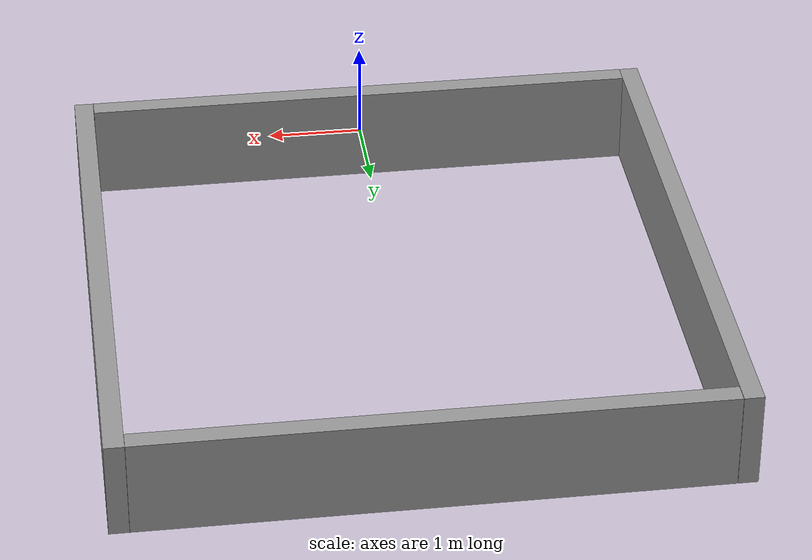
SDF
<?xml version='1.0'?>
<sdf version='1.6'>
  <model name='fence'>
    <link name='link'>
      <inertial>
        <mass>100</mass>
        <inertia>
          <ixx>16.6667</ixx>
          <ixy>0</ixy>
          <ixz>0</ixz>
          <iyy>16.6667</iyy>
          <iyz>0</iyz>
          <izz>16.6667</izz>
        </inertia>
        <pose frame=''>0 0 0 0 -0 0</pose>
      </inertial>
      <self_collide>0</self_collide>
      <enable_wind>0</enable_wind>
      <kinematic>0</kinematic>
      <pose frame=''>0 0 0 0 -0 0</pose>
      <gravity>1</gravity>
      <visual name='visual'>
        <geometry>
          <box>
            <size>5.8 0.2 1</size>
          </box>
        </geometry>
        <material>
          <script>
            <name>Gazebo/Grey</name>
            <uri>file://media/materials/scripts/gazebo.material</uri>
          </script>
          <shader type='vertex'>
            <normal_map>__default__</normal_map>
          </shader>
          <ambient>0.3 0.3 0.3 1</ambient>
          <diffuse>0.7 0.7 0.7 1</diffuse>
          <specular>0.01 0.01 0.01 1</specular>
          <emissive>0 0 0 1</emissive>
        </material>
        <pose frame=''>0 0 0 0 -0 0</pose>
        <transparency>0</transparency>
        <cast_shadows>1</cast_shadows>
      </visual>
      <collision name='collision'>
        <laser_retro>0</laser_retro>
        <max_contacts>10</max_contacts>
        <pose frame=''>0 0 0 0 -0 0</pose>
        <geometry>
          <box>
            <size>5.8 0.2 1</size>
          </box>
        </geometry>
        <surface>
          <friction>
            <ode>
              <mu>1</mu>
              <mu2>1</mu2>
              <fdir1>0 0 0</fdir1>
              <slip1>0</slip1>
              <slip2>0</slip2>
            </ode>
            <torsional>
              <coefficient>1</coefficient>
              <patch_radius>0</patch_radius>
              <surface_radius>0</surface_radius>
              <use_patch_radius>1</use_patch_radius>
              <ode>
                <slip>0</slip>
              </ode>
            </torsional>
          </friction>
          <bounce>
            <restitution_coefficient>0</restitution_coefficient>
            <threshold>1e+06</threshold>
          </bounce>
          <contact>
            <collide_without_contact>0</collide_without_contact>
            <collide_without_contact_bitmask>1</collide_without_contact_bitmask>
            <collide_bitmask>1</collide_bitmask>
            <ode>
              <soft_cfm>0</soft_cfm>
              <soft_erp>0.2</soft_erp>
              <kp>1e+13</kp>
              <kd>1</kd>
              <max_vel>0.01</max_vel>
              <min_depth>0</min_depth>
            </ode>
            <bullet>
              <split_impulse>1</split_impulse>
              <split_impulse_penetration_threshold>-0.01</split_impulse_penetration_threshold>
              <soft_cfm>0</soft_cfm>
              <soft_erp>0.2</soft_erp>
              <kp>1e+13</kp>
              <kd>1</kd>
            </bullet>
          </contact>
        </surface>
      </collision>
    </link>
    <link name='link_clone'>
      <inertial>
        <mass>100</mass>
        <inertia>
          <ixx>16.6667</ixx>
          <ixy>0</ixy>
          <ixz>0</ixz>
          <iyy>16.6667</iyy>
          <iyz>0</iyz>
          <izz>16.6667</izz>
        </inertia>
        <pose frame=''>0 0 0 0 -0 0</pose>
      </inertial>
      <self_collide>0</self_collide>
      <enable_wind>0</enable_wind>
      <kinematic>0</kinematic>
      <pose frame=''>-2.99969 3.00111 -2.9e-05 -1e-05 -0 1.5708</pose>
      <gravity>1</gravity>
      <visual name='visual'>
        <geometry>
          <box>
            <size>6.2 0.2 1</size>
          </box>
        </geometry>
        <material>
          <script>
            <name>Gazebo/Grey</name>
            <uri>file://media/materials/scripts/gazebo.material</uri>
          </script>
          <shader type='vertex'>
            <normal_map>__default__</normal_map>
          </shader>
          <ambient>0.3 0.3 0.3 1</ambient>
          <diffuse>0.7 0.7 0.7 1</diffuse>
          <specular>0.01 0.01 0.01 1</specular>
          <emissive>0 0 0 1</emissive>
        </material>
        <pose frame=''>0 0 0 0 -0 0</pose>
        <transparency>0</transparency>
        <cast_shadows>1</cast_shadows>
      </visual>
      <collision name='collision'>
        <laser_retro>0</laser_retro>
        <max_contacts>10</max_contacts>
        <pose frame=''>0 0 0 0 -0 0</pose>
        <geometry>
          <box>
            <size>6.2 0.2 1</size>
          </box>
        </geometry>
        <surface>
          <friction>
            <ode>
              <mu>1</mu>
              <mu2>1</mu2>
              <fdir1>0 0 0</fdir1>
              <slip1>0</slip1>
              <slip2>0</slip2>
            </ode>
            <torsional>
              <coefficient>1</coefficient>
              <patch_radius>0</patch_radius>
              <surface_radius>0</surface_radius>
              <use_patch_radius>1</use_patch_radius>
              <ode>
                <slip>0</slip>
              </ode>
            </torsional>
          </friction>
          <bounce>
            <restitution_coefficient>0</restitution_coefficient>
            <threshold>1e+06</threshold>
          </bounce>
          <contact>
            <collide_without_contact>0</collide_without_contact>
            <collide_without_contact_bitmask>1</collide_without_contact_bitmask>
            <collide_bitmask>1</collide_bitmask>
            <ode>
              <soft_cfm>0</soft_cfm>
              <soft_erp>0.2</soft_erp>
              <kp>1e+13</kp>
              <kd>1</kd>
              <max_vel>0.01</max_vel>
              <min_depth>0</min_depth>
            </ode>
            <bullet>
              <split_impulse>1</split_impulse>
              <split_impulse_penetration_threshold>-0.01</split_impulse_penetration_threshold>
              <soft_cfm>0</soft_cfm>
              <soft_erp>0.2</soft_erp>
              <kp>1e+13</kp>
              <kd>1</kd>
            </bullet>
          </contact>
        </surface>
      </collision>
    </link>
    <link name='link_clone_0'>
      <inertial>
        <mass>100</mass>
        <inertia>
          <ixx>16.6667</ixx>
          <ixy>0</ixy>
          <ixz>0</ixz>
          <iyy>16.6667</iyy>
          <iyz>0</iyz>
          <izz>16.6667</izz>
        </inertia>
        <pose frame=''>0 0 0 0 -0 0</pose>
      </inertial>
      <self_collide>0</self_collide>
      <enable_wind>0</enable_wind>
      <kinematic>0</kinematic>
      <pose frame=''>0.002993 6.00149 -5.9e-05 -1e-05 0 0</pose>
      <gravity>1</gravity>
      <visual name='visual'>
        <geometry>
          <box>
            <size>5.8 0.2 1</size>
          </box>
        </geometry>
        <material>
          <script>
            <name>Gazebo/Grey</name>
            <uri>file://media/materials/scripts/gazebo.material</uri>
          </script>
          <shader type='vertex'>
            <normal_map>__default__</normal_map>
          </shader>
          <ambient>0.3 0.3 0.3 1</ambient>
          <diffuse>0.7 0.7 0.7 1</diffuse>
          <specular>0.01 0.01 0.01 1</specular>
          <emissive>0 0 0 1</emissive>
        </material>
        <pose frame=''>0 0 0 0 -0 0</pose>
        <transparency>0</transparency>
        <cast_shadows>1</cast_shadows>
      </visual>
      <collision name='collision'>
        <laser_retro>0</laser_retro>
        <max_contacts>10</max_contacts>
        <pose frame=''>0 0 0 0 -0 0</pose>
        <geometry>
          <box>
            <size>5.8 0.2 1</size>
          </box>
        </geometry>
        <surface>
          <friction>
            <ode>
              <mu>1</mu>
              <mu2>1</mu2>
              <fdir1>0 0 0</fdir1>
              <slip1>0</slip1>
              <slip2>0</slip2>
            </ode>
            <torsional>
              <coefficient>1</coefficient>
              <patch_radius>0</patch_radius>
              <surface_radius>0</surface_radius>
              <use_patch_radius>1</use_patch_radius>
              <ode>
                <slip>0</slip>
              </ode>
            </torsional>
          </friction>
          <bounce>
            <restitution_coefficient>0</restitution_coefficient>
            <threshold>1e+06</threshold>
          </bounce>
          <contact>
            <collide_without_contact>0</collide_without_contact>
            <collide_without_contact_bitmask>1</collide_without_contact_bitmask>
            <collide_bitmask>1</collide_bitmask>
            <ode>
              <soft_cfm>0</soft_cfm>
              <soft_erp>0.2</soft_erp>
              <kp>1e+13</kp>
              <kd>1</kd>
              <max_vel>0.01</max_vel>
              <min_depth>0</min_depth>
            </ode>
            <bullet>
              <split_impulse>1</split_impulse>
              <split_impulse_penetration_threshold>-0.01</split_impulse_penetration_threshold>
              <soft_cfm>0</soft_cfm>
              <soft_erp>0.2</soft_erp>
              <kp>1e+13</kp>
              <kd>1</kd>
            </bullet>
          </contact>
        </surface>
      </collision>
    </link>
    <link name='link_clone_clone'>
      <inertial>
        <mass>100</mass>
        <inertia>
          <ixx>16.6667</ixx>
          <ixy>0</ixy>
          <ixz>0</ixz>
          <iyy>16.6667</iyy>
          <iyz>0</iyz>
          <izz>16.6667</izz>
        </inertia>
        <pose frame=''>0 0 0 0 -0 0</pose>
      </inertial>
      <self_collide>0</self_collide>
      <enable_wind>0</enable_wind>
      <kinematic>0</kinematic>
      <pose frame=''>3.00439 3.00134 -5.8e-05 -1e-05 1e-05 1.5708</pose>
      <gravity>1</gravity>
      <visual name='visual'>
        <geometry>
          <box>
            <size>6.2 0.2 1</size>
          </box>
        </geometry>
        <material>
          <script>
            <name>Gazebo/Grey</name>
            <uri>file://media/materials/scripts/gazebo.material</uri>
          </script>
          <shader type='vertex'>
            <normal_map>__default__</normal_map>
          </shader>
          <ambient>0.3 0.3 0.3 1</ambient>
          <diffuse>0.7 0.7 0.7 1</diffuse>
          <specular>0.01 0.01 0.01 1</specular>
          <emissive>0 0 0 1</emissive>
        </material>
        <pose frame=''>0 0 0 0 -0 0</pose>
        <transparency>0</transparency>
        <cast_shadows>1</cast_shadows>
      </visual>
      <collision name='collision'>
        <laser_retro>0</laser_retro>
        <max_contacts>10</max_contacts>
        <pose frame=''>0 0 0 0 -0 0</pose>
        <geometry>
          <box>
            <size>6.2 0.2 1</size>
          </box>
        </geometry>
        <surface>
          <friction>
            <ode>
              <mu>1</mu>
              <mu2>1</mu2>
              <fdir1>0 0 0</fdir1>
              <slip1>0</slip1>
              <slip2>0</slip2>
            </ode>
            <torsional>
              <coefficient>1</coefficient>
              <patch_radius>0</patch_radius>
              <surface_radius>0</surface_radius>
              <use_patch_radius>1</use_patch_radius>
              <ode>
                <slip>0</slip>
              </ode>
            </torsional>
          </friction>
          <bounce>
            <restitution_coefficient>0</restitution_coefficient>
            <threshold>1e+06</threshold>
          </bounce>
          <contact>
            <collide_without_contact>0</collide_without_contact>
            <collide_without_contact_bitmask>1</collide_without_contact_bitmask>
            <collide_bitmask>1</collide_bitmask>
            <ode>
              <soft_cfm>0</soft_cfm>
              <soft_erp>0.2</soft_erp>
              <kp>1e+13</kp>
              <kd>1</kd>
              <max_vel>0.01</max_vel>
              <min_depth>0</min_depth>
            </ode>
            <bullet>
              <split_impulse>1</split_impulse>
              <split_impulse_penetration_threshold>-0.01</split_impulse_penetration_threshold>
              <soft_cfm>0</soft_cfm>
              <soft_erp>0.2</soft_erp>
              <kp>1e+13</kp>
              <kd>1</kd>
            </bullet>
          </contact>
        </surface>
      </collision>
    </link>
    <static>0</static>
    <allow_auto_disable>1</allow_auto_disable>
  </model>
</sdf>
